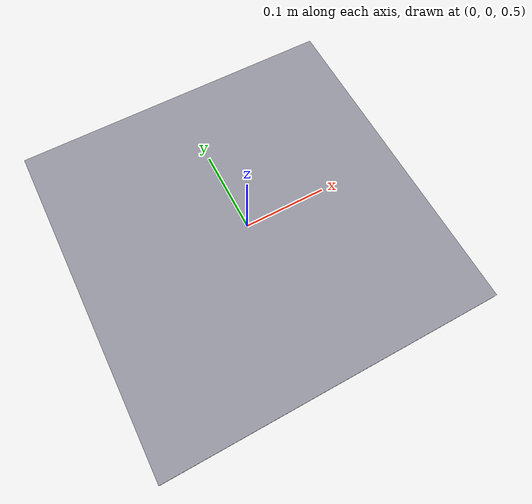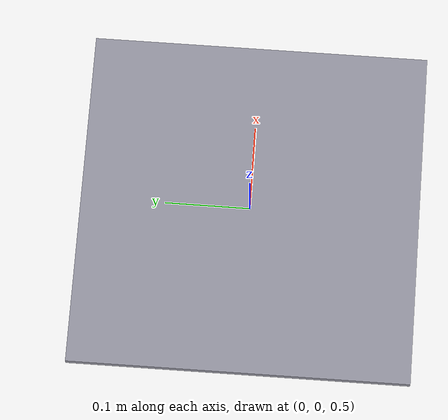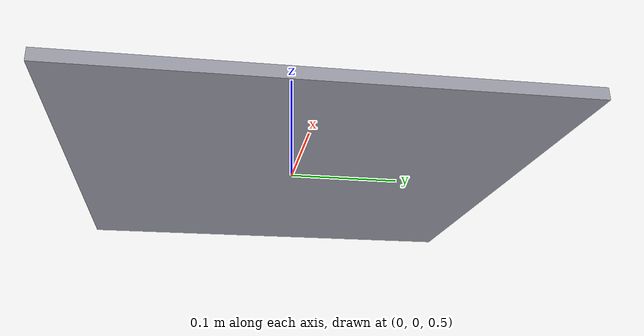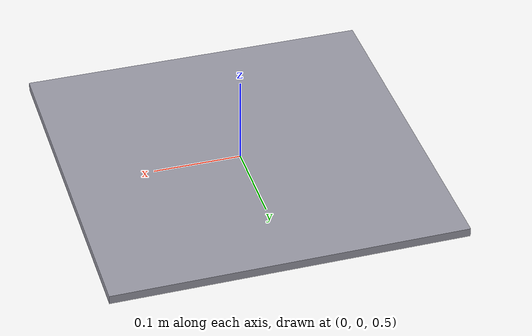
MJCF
<mujoco model="balance">
  <!-- Solver options live in Python (configs/numerics/balance.yaml). -->
  <compiler angle="radian"/>

  <default>
    <position ctrllimited="true" ctrlrange="-0.5 0.5" kp="3" kv="0.3"/>
    <default class="goal">
      <geom conaffinity="0" contype="0" rgba="0 1 0 0.2"/>
    </default>
    <default class="block">
      <!-- condim=6 activates spin/roll, so randomizing them actually bites. -->
      <geom friction="0.5 0.001 0.01" solref="0.05 1.1"
        solimp="0.8 0.85 0.002 0.5 2" condim="6"/>
    </default>
    <geom friction="0.5" solimp="0.0 0.95 0.005" solref="0.02 1"/>
  </default>

  <worldbody>
    <body name="gimbal_roll" pos="0 0 0.5">
      <joint name="tilt_roll" type="hinge" axis="1 0 0" pos="0 0 0"
        range="-0.5 0.5" limited="true" damping="0.05"/>
      <!-- MuJoCo requires a moving body's inertia to be nonzero, hence the
           token mass. -->
      <inertial pos="0 0 0" mass="0.01" diaginertia="1e-5 1e-5 1e-5"/>
      <body name="plate">
        <joint name="tilt_pitch" type="hinge" axis="0 1 0" pos="0 0 0"
          range="-0.5 0.5" limited="true" damping="0.05"/>
        <geom name="plate" friction="0.3" type="box" size="0.2 0.2 0.005"
          rgba="0.6 0.6 0.65 1"/>
      </body>
    </body>

    <!-- Grafted at build time. It sits under the world because mocap bodies
         must be direct children of it; the host writes mocap_pos/quat each
         frame so the goal tracks the plate's tilt. -->
    <body name="goal" mocap="true" pos="0.0 0.0 0.5">
    </body>

    <!-- "block" geoms are grafted at build time. -->
    <body name="block" pos="0.0 0.0 0.0">
      <joint name="block" type="free"/>
    </body>
  </worldbody>

  <actuator>
    <position name="roll_motor" joint="tilt_roll"/>
    <position name="pitch_motor" joint="tilt_pitch"/>
  </actuator>

  <sensor>
    <framepos name="position" objtype="body" objname="block" reftype="body" refname="goal"/>
  </sensor>
</mujoco>
